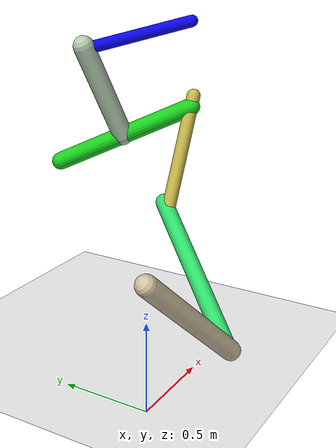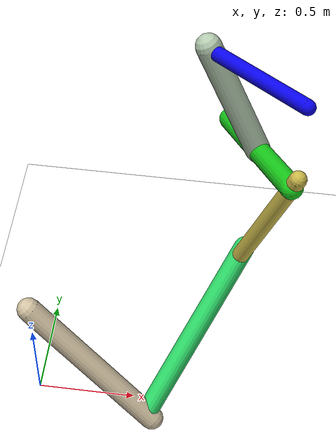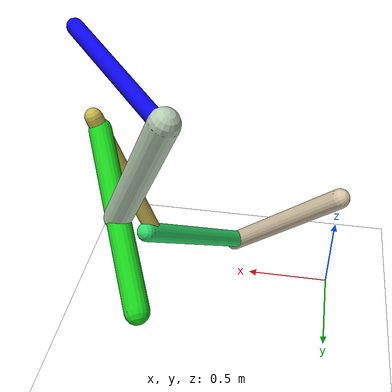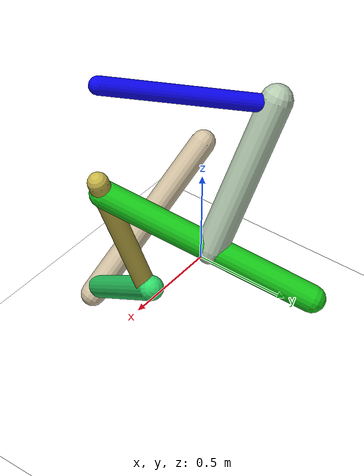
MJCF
<mujoco model="morphology">
  <option timestep="0.01"/>
  <default>
    <default class="/"/>
    <default class="0/"/>
    <default class="0/1/"/>
    <default class="0/1/2/"/>
    <default class="0/1/2/3/"/>
    <default class="0/1/2/3/4/"/>
    <default class="0/1/2/3/4/5/"/>
  </default>
  <asset>
    <texture name="texplane" type="2d" builtin="checker" rgb1="0.10000000000000001 0.20000000000000001 0.29999999999999999" rgb2="0.20000000000000001 0.29999999999999999 0.40000000000000002" width="300" height="300"/>
    <material name="MatPlane" class="/" texture="texplane" texrepeat="20 20" specular="1" shininess="1" reflectance="0.5"/>
  </asset>
  <worldbody>
    <light name="//unnamed_light_0" class="/" directional="true" pos="0 0 1.5" dir="0 0 -1.3" cutoff="100" exponent="1" diffuse="1 1 1" specular="0.10000000000000001 0.10000000000000001 0.10000000000000001"/>
    <geom name="ground" class="/" type="plane" size="15 15 0.5" material="MatPlane" rgba="1 1 1 1"/>
    <site name="body" class="/" size="9.9999999999999995e-07 9.9999999999999995e-07 9.9999999999999995e-07" pos="0 0 0.70519194602966306"/>
    <body pos="0 0 0.70519194602966306" name="0/">
      <freejoint name="0/"/>
      <geom name="0/geom" class="0/" type="capsule" contype="1" conaffinity="1" condim="3" size="0.058984107278449369" rgba="0.82345548176938754 0.7591625083280753 0.63741643592330977 1" friction="0.59999999999999998 0.10000000000000001 0.10000000000000001" fromto="0 0 0 0.6222418081069323 -0.17300086952457094 -0.60519192493134244"/>
      <site name="0/end0" class="0/" size="0.0050000000000000001" pos="0.6222418081069323 -0.17300086952457094 -0.60519192493134244"/>
      <site name="0/attach1" class="0/" size="9.9999999999999995e-07 9.9999999999999995e-07 9.9999999999999995e-07" pos="0.59237831758423154 -0.16469797222619759 -0.57614671601234246"/>
      <body pos="0.59237831758423154 -0.16469797222619759 -0.57614671601234246" name="0/1/">
        <joint name="0/1/joint/" class="0/" type="hinge" axis="0 0 1" limited="true" range="-59.172244268748301 59.172244268748301"/>
        <geom name="0/1/geom" class="0/1/" type="capsule" contype="1" conaffinity="1" condim="3" size="0.052870433395628719" rgba="0.17716947160918139 0.85471119946838292 0.40870036056039483 1" friction="0.59999999999999998 0.10000000000000001 0.10000000000000001" fromto="0 0 0 0.4110239051787925 0.64868257203810487 0.62522041659051375"/>
        <site name="0/1/end1" class="0/1/" size="0.0050000000000000001" pos="0.4110239051787925 0.64868257203810487 0.62522041659051375"/>
        <site name="0/1/attach2" class="0/1/" size="9.9999999999999995e-07 9.9999999999999995e-07 9.9999999999999995e-07" pos="0.38389271857682372 0.60586382673968919 0.5839503795533757"/>
        <body pos="0.38389271857682372 0.60586382673968919 0.5839503795533757" name="0/1/2/">
          <geom name="0/1/2/geom" class="0/1/2/" type="capsule" contype="1" conaffinity="1" condim="3" size="0.042423630818083272" rgba="0.78538641628510997 0.71703419496094523 0.28507492858534156 1" friction="0.59999999999999998 0.10000000000000001 0.10000000000000001" fromto="0 0 0 0.24466746729023781 -0.036224798627751742 0.67756802111427694"/>
          <site name="0/1/2/end2" class="0/1/2/" size="0.0050000000000000001" pos="0.24466746729023781 -0.036224798627751742 0.67756802111427694"/>
          <site name="0/1/2/attach3" class="0/1/2/" size="9.9999999999999995e-07 9.9999999999999995e-07 9.9999999999999995e-07" pos="0.22116978261714601 -0.032745795452836707 0.61249488376158023"/>
          <body pos="0.22116978261714601 -0.032745795452836707 0.61249488376158023" name="0/1/2/3/">
            <joint name="0/1/2/3/joint/" class="0/1/2/" type="hinge" axis="0.94071292718376709 0.018108978313739477 -0.3387200223396622" limited="true" range="-40.550267891413704 40.550267891413704"/>
            <geom name="0/1/2/3/geom" class="0/1/2/3/" type="capsule" contype="1" conaffinity="1" condim="3" size="0.055249315590740811" rgba="0.095626937447615856 0.81097819454046882 0.1077057573593071 1" friction="0.59999999999999998 0.10000000000000001 0.10000000000000001" fromto="0 0 0 -0.34333745311438785 0.74820982732829977 -0.36607597367700501"/>
            <site name="0/1/2/3/end3" class="0/1/2/3/" size="0.0050000000000000001" pos="-0.34333745311438785 0.74820982732829977 -0.36607597367700501"/>
            <site name="0/1/2/3/attach4" class="0/1/2/3/" size="9.9999999999999995e-07 9.9999999999999995e-07 9.9999999999999995e-07" pos="-0.17635045086176876 0.38430744793983113 -0.18802977194012241"/>
            <body pos="-0.17635045086176876 0.38430744793983113 -0.18802977194012241" name="0/1/2/3/4/">
              <joint name="0/1/2/3/4/joint/" class="0/1/2/3/" type="hinge" axis="-2.7755575615628914e-17 0.43948577790383342 0.89824954829950354" limited="true" range="-34.941608563125754 34.941608563125754"/>
              <geom name="0/1/2/3/4/geom" class="0/1/2/3/4/" type="capsule" contype="1" conaffinity="1" condim="3" size="0.063079458059398047" rgba="0.70174369117045077 0.7933679368619686 0.68655175816223557 1" friction="0.59999999999999998 0.10000000000000001 0.10000000000000001" fromto="0 0 0 -0.27021399310443406 0.086471181595003443 0.57306460784228408"/>
              <site name="0/1/2/3/4/end4" class="0/1/2/3/4/" size="0.0050000000000000001" pos="-0.27021399310443406 0.086471181595003443 0.57306460784228408"/>
              <site name="0/1/2/3/4/attach5" class="0/1/2/3/4/" size="9.9999999999999995e-07 9.9999999999999995e-07 9.9999999999999995e-07" pos="-0.26255487513839115 0.084020187207591079 0.55682129866646424"/>
              <body pos="-0.26255487513839115 0.084020187207591079 0.55682129866646424" name="0/1/2/3/4/5/">
                <joint name="0/1/2/3/4/5/joint/" class="0/1/2/3/4/" type="hinge" axis="-0.90632902480135835 -0.063049343922792572 -0.41784264865320297" limited="true" range="-54.443925338382485 54.443925338382485"/>
                <geom name="0/1/2/3/4/5/geom" class="0/1/2/3/4/5/" type="capsule" contype="1" conaffinity="1" condim="3" size="0.035852420867606857" rgba="0.039110838761519107 0.013126044478031562 0.92261581824579098 1" friction="0.59999999999999998 0.10000000000000001 0.10000000000000001" fromto="0 0 0 0.46457713582540539 -0.45266388634013272 0.14329264644735695"/>
                <site name="0/1/2/3/4/5/end5" class="0/1/2/3/4/5/" size="0.0050000000000000001" pos="0.46457713582540539 -0.45266388634013272 0.14329264644735695"/>
              </body>
            </body>
          </body>
        </body>
      </body>
      <camera name="0/iso" class="0/" mode="trackcom" pos="-2.2999999999999998 -2.2999999999999998 1" xyaxes="0.45000000000000001 -0.45000000000000001 0 0.29999999999999999 0.14999999999999999 0.93999999999999995"/>
    </body>
  </worldbody>
  <actuator>
    <motor name="0/1/motor" class="0/1/" ctrllimited="true" ctrlrange="-1 1" gear="79" joint="0/1/joint/"/>
    <motor name="0/1/2/3/motor" class="0/1/2/3/" ctrllimited="true" ctrlrange="-1 1" gear="95" joint="0/1/2/3/joint/"/>
    <motor name="0/1/2/3/4/motor" class="0/1/2/3/4/" ctrllimited="true" ctrlrange="-1 1" gear="67" joint="0/1/2/3/4/joint/"/>
    <motor name="0/1/2/3/4/5/motor" class="0/1/2/3/4/5/" ctrllimited="true" ctrlrange="-1 1" gear="79" joint="0/1/2/3/4/5/joint/"/>
  </actuator>
  <sensor>
    <subtreelinvel name="velocity" body="0/"/>
  </sensor>
</mujoco>
